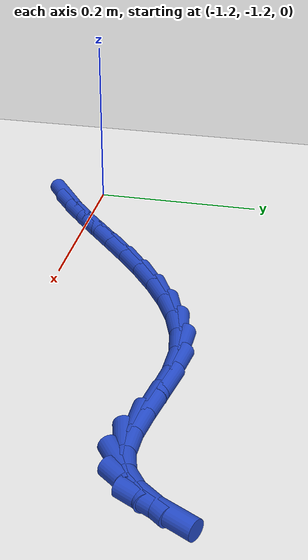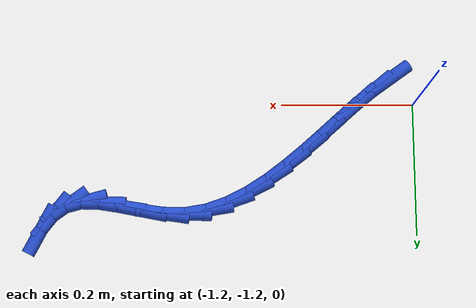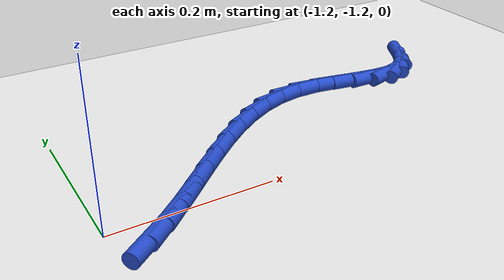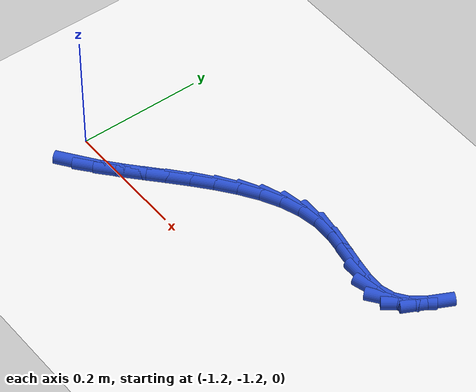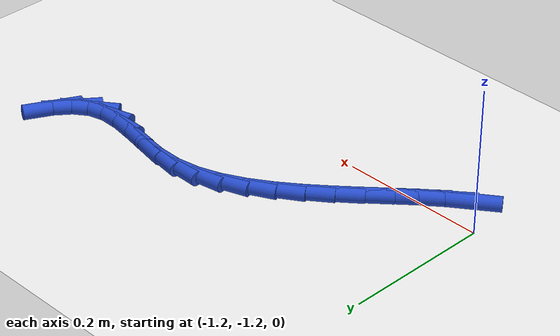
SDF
<sdf version="1.6">
 <world name="default">
  <model name="ground_plane">
   <static>1</static>
   <link name="link">
    <collision name="collision">
     <geometry><plane><normal>0 0 1</normal><size>100 100</size></plane></geometry>
     <surface><friction><ode><mu>100</mu><mu2>50</mu2></ode></friction></surface>
    </collision>
    <visual name="visual">
     <cast_shadows>0</cast_shadows>
     <geometry><plane><normal>0 0 1</normal><size>100 100</size></plane></geometry>
     <material>
      <script><uri>file://media/materials/scripts/gazebo.material</uri><name>Gazebo/WhiteGlow</name></script>
     </material>
    </visual>
   </link>
  </model>
  <model name="line">
   <link name="link_180">
    <pose>-1.1610462418922598 -1.2365967128382496 0.01 0 1.57 0.6282425007300823</pose>
    <collision name="collision">
     <geometry><cylinder><radius>0.01</radius><length>0.08</length></cylinder></geometry>
    </collision>
    <visual name="visual">
     <material>
      <script><name>Gazebo/Blue</name><uri>file://media/materials/scripts/gazebo.material</uri></script>
     </material>
     <geometry><cylinder><radius>0.01</radius><length>0.08</length></cylinder></geometry>
    </visual>
   </link>
   <link name="link_181">
    <pose>-1.1371131027086185 -1.2192110493959536 0.01 0 1.57 0.6938049453419415</pose>
    <collision name="collision">
     <geometry><cylinder><radius>0.01</radius><length>0.08</length></cylinder></geometry>
    </collision>
    <visual name="visual">
     <material>
      <script><name>Gazebo/Blue</name><uri>file://media/materials/scripts/gazebo.material</uri></script>
     </material>
     <geometry><cylinder><radius>0.01</radius><length>0.08</length></cylinder></geometry>
    </visual>
   </link>
   <link name="link_182">
    <pose>-1.1124543225837014 -1.1987010329628094 0.01 0 1.57 0.7287275663716666</pose>
    <collision name="collision">
     <geometry><cylinder><radius>0.01</radius><length>0.08</length></cylinder></geometry>
    </collision>
    <visual name="visual">
     <material>
      <script><name>Gazebo/Blue</name><uri>file://media/materials/scripts/gazebo.material</uri></script>
     </material>
     <geometry><cylinder><radius>0.01</radius><length>0.08</length></cylinder></geometry>
    </visual>
   </link>
   <link name="link_183">
    <pose>-1.0870501145052582 -1.1760245093194783 0.01 0 1.57 0.7397948841210513</pose>
    <collision name="collision">
     <geometry><cylinder><radius>0.01</radius><length>0.08</length></cylinder></geometry>
    </collision>
    <visual name="visual">
     <material>
      <script><name>Gazebo/Blue</name><uri>file://media/materials/scripts/gazebo.material</uri></script>
     </material>
     <geometry><cylinder><radius>0.01</radius><length>0.08</length></cylinder></geometry>
    </visual>
   </link>
   <link name="link_184">
    <pose>-1.0608806914610382 -1.1521393242466218 0.01 0 1.57 0.7302886113070338</pose>
    <collision name="collision">
     <geometry><cylinder><radius>0.01</radius><length>0.08</length></cylinder></geometry>
    </collision>
    <visual name="visual">
     <material>
      <script><name>Gazebo/Blue</name><uri>file://media/materials/scripts/gazebo.material</uri></script>
     </material>
     <geometry><cylinder><radius>0.01</radius><length>0.08</length></cylinder></geometry>
    </visual>
   </link>
   <link name="link_185">
    <pose>-1.0339262664387903 -1.1280033235249 0.01 0 1.57 0.7010045058407869</pose>
    <collision name="collision">
     <geometry><cylinder><radius>0.01</radius><length>0.08</length></cylinder></geometry>
    </collision>
    <visual name="visual">
     <material>
      <script><name>Gazebo/Blue</name><uri>file://media/materials/scripts/gazebo.material</uri></script>
     </material>
     <geometry><cylinder><radius>0.01</radius><length>0.08</length></cylinder></geometry>
    </visual>
   </link>
   <link name="link_186">
    <pose>-1.0061670524262656 -1.1045743529349759 0.01 0 1.57 0.6507660660604547</pose>
    <collision name="collision">
     <geometry><cylinder><radius>0.01</radius><length>0.08</length></cylinder></geometry>
    </collision>
    <visual name="visual">
     <material>
      <script><name>Gazebo/Blue</name><uri>file://media/materials/scripts/gazebo.material</uri></script>
     </material>
     <geometry><cylinder><radius>0.01</radius><length>0.08</length></cylinder></geometry>
    </visual>
   </link>
   <link name="link_187">
    <pose>-0.9775832624112128 -1.08281025825751 0.01 0 1.57 0.5766874608666472</pose>
    <collision name="collision">
     <geometry><cylinder><radius>0.01</radius><length>0.08</length></cylinder></geometry>
    </collision>
    <visual name="visual">
     <material>
      <script><name>Gazebo/Blue</name><uri>file://media/materials/scripts/gazebo.material</uri></script>
     </material>
     <geometry><cylinder><radius>0.01</radius><length>0.08</length></cylinder></geometry>
    </visual>
   </link>
   <link name="link_188">
    <pose>-0.9481551093813815 -1.0636688852731637 0.01 0 1.57 0.47453828723228536</pose>
    <collision name="collision">
     <geometry><cylinder><radius>0.01</radius><length>0.08</length></cylinder></geometry>
    </collision>
    <visual name="visual">
     <material>
      <script><name>Gazebo/Blue</name><uri>file://media/materials/scripts/gazebo.material</uri></script>
     </material>
     <geometry><cylinder><radius>0.01</radius><length>0.08</length></cylinder></geometry>
    </visual>
   </link>
   <link name="link_189">
    <pose>-0.9178628063245216 -1.0481080797625983 0.01 0 1.57 0.33983482422312433</pose>
    <collision name="collision">
     <geometry><cylinder><radius>0.01</radius><length>0.08</length></cylinder></geometry>
    </collision>
    <visual name="visual">
     <material>
      <script><name>Gazebo/Blue</name><uri>file://media/materials/scripts/gazebo.material</uri></script>
     </material>
     <geometry><cylinder><radius>0.01</radius><length>0.08</length></cylinder></geometry>
    </visual>
   </link>
   <link name="link_190">
    <pose>-0.8866865662283817 -1.0370856875064742 0.01 0 1.57 0.17058702275658683</pose>
    <collision name="collision">
     <geometry><cylinder><radius>0.01</radius><length>0.08</length></cylinder></geometry>
    </collision>
    <visual name="visual">
     <material>
      <script><name>Gazebo/Blue</name><uri>file://media/materials/scripts/gazebo.material</uri></script>
     </material>
     <geometry><cylinder><radius>0.01</radius><length>0.08</length></cylinder></geometry>
    </visual>
   </link>
   <link name="link_191">
    <pose>-0.8546066020807126 -1.0315595542854537 0.01 0 1.57 -0.016219145921223876</pose>
    <collision name="collision">
     <geometry><cylinder><radius>0.01</radius><length>0.08</length></cylinder></geometry>
    </collision>
    <visual name="visual">
     <material>
      <script><name>Gazebo/Blue</name><uri>file://media/materials/scripts/gazebo.material</uri></script>
     </material>
     <geometry><cylinder><radius>0.01</radius><length>0.08</length></cylinder></geometry>
    </visual>
   </link>
   <link name="link_192">
    <pose>-0.8217117269098053 -1.0320931278541428 0.01 0 1.57 -0.14245288534111153</pose>
    <collision name="collision">
     <geometry><cylinder><radius>0.01</radius><length>0.08</length></cylinder></geometry>
    </collision>
    <visual name="visual">
     <material>
      <script><name>Gazebo/Blue</name><uri>file://media/materials/scripts/gazebo.material</uri></script>
     </material>
     <geometry><cylinder><radius>0.01</radius><length>0.08</length></cylinder></geometry>
    </visual>
   </link>
   <link name="link_193">
    <pose>-0.7887600502511766 -1.0368192010615573 0.01 0 1.57 -0.1891807209800239</pose>
    <collision name="collision">
     <geometry><cylinder><radius>0.01</radius><length>0.08</length></cylinder></geometry>
    </collision>
    <visual name="visual">
     <material>
      <script><name>Gazebo/Blue</name><uri>file://media/materials/scripts/gazebo.material</uri></script>
     </material>
     <geometry><cylinder><radius>0.01</radius><length>0.08</length></cylinder></geometry>
    </visual>
   </link>
   <link name="link_194">
    <pose>-0.7567644280595996 -1.0429454153074327 0.01 0 1.57 -0.1563162073218059</pose>
    <collision name="collision">
     <geometry><cylinder><radius>0.01</radius><length>0.08</length></cylinder></geometry>
    </collision>
    <visual name="visual">
     <material>
      <script><name>Gazebo/Blue</name><uri>file://media/materials/scripts/gazebo.material</uri></script>
     </material>
     <geometry><cylinder><radius>0.01</radius><length>0.08</length></cylinder></geometry>
    </visual>
   </link>
   <link name="link_195">
    <pose>-0.7267382137213818 -1.0476776054911234 0.01 0 1.57 -0.02011309949068768</pose>
    <collision name="collision">
     <geometry><cylinder><radius>0.01</radius><length>0.08</length></cylinder></geometry>
    </collision>
    <visual name="visual">
     <material>
      <script><name>Gazebo/Blue</name><uri>file://media/materials/scripts/gazebo.material</uri></script>
     </material>
     <geometry><cylinder><radius>0.01</radius><length>0.08</length></cylinder></geometry>
    </visual>
   </link>
   <link name="link_196">
    <pose>-0.6996947606228302 -1.0482216065119836 0.01 0 1.57 0.2683176155607595</pose>
    <collision name="collision">
     <geometry><cylinder><radius>0.01</radius><length>0.08</length></cylinder></geometry>
    </collision>
    <visual name="visual">
     <material>
      <script><name>Gazebo/Blue</name><uri>file://media/materials/scripts/gazebo.material</uri></script>
     </material>
     <geometry><cylinder><radius>0.01</radius><length>0.08</length></cylinder></geometry>
    </visual>
   </link>
   <link name="link_197">
    <pose>-0.6766072244825084 -1.0418737408512821 0.01 0 1.57 0.6336042513885468</pose>
    <collision name="collision">
     <geometry><cylinder><radius>0.01</radius><length>0.08</length></cylinder></geometry>
    </collision>
    <visual name="visual">
     <material>
      <script><name>Gazebo/Blue</name><uri>file://media/materials/scripts/gazebo.material</uri></script>
     </material>
     <geometry><cylinder><radius>0.01</radius><length>0.08</length></cylinder></geometry>
    </visual>
   </link>
   <link name="link_198">
    <pose>-0.6575768419361446 -1.0278930779321243 0.01 0 1.57 0.9156905709041027</pose>
    <collision name="collision">
     <geometry><cylinder><radius>0.01</radius><length>0.08</length></cylinder></geometry>
    </collision>
    <visual name="visual">
     <material>
      <script><name>Gazebo/Blue</name><uri>file://media/materials/scripts/gazebo.material</uri></script>
     </material>
     <geometry><cylinder><radius>0.01</radius><length>0.08</length></cylinder></geometry>
    </visual>
   </link>
   <link name="link_199">
    <pose>-0.6418612028839566 -1.0074377912145698 0.01 0 1.57 1.0969004411001675</pose>
    <collision name="collision">
     <geometry><cylinder><radius>0.01</radius><length>0.08</length></cylinder></geometry>
    </collision>
    <visual name="visual">
     <material>
      <script><name>Gazebo/Blue</name><uri>file://media/materials/scripts/gazebo.material</uri></script>
     </material>
     <geometry><cylinder><radius>0.01</radius><length>0.08</length></cylinder></geometry>
    </visual>
   </link>
  </model>
 </world>
</sdf>
